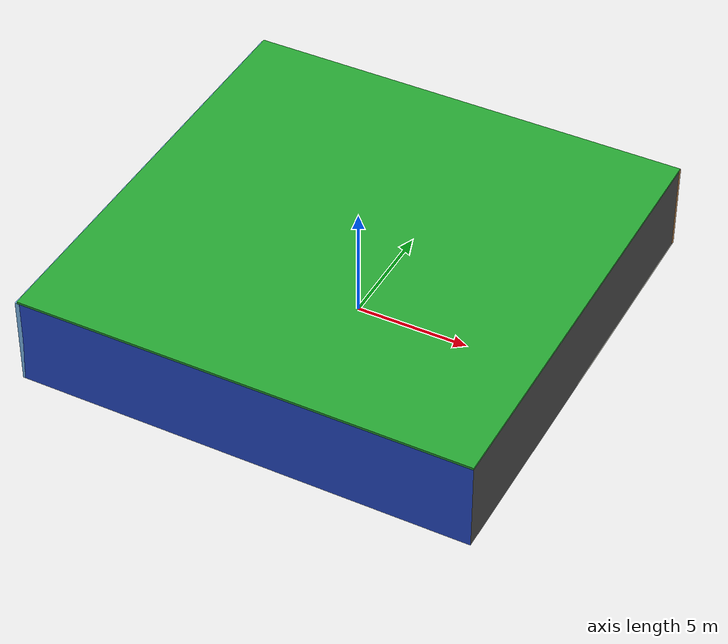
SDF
<sdf version="1.4">
 <world name="default">
  <physics type="ode">
   <max_step_size>0.001</max_step_size>
   <real_time_factor>1</real_time_factor>
   <real_time_update_rate>1000</real_time_update_rate>
   <gravity>0 0 -9.8</gravity>
  </physics>
  <scene><ambient>0.4 0.4 0.4 1</ambient><background>0.7 0.7 0.7 1</background><shadows>1</shadows></scene>
  <model name="Surrounding">
   <static>1</static>
   <link name="Ceiling">
    <collision name="Ceiling_Collision"><geometry><box><size>20 20 0.1</size></box></geometry></collision>
    <visual name="Ceiling_Visual">
     <geometry><box><size>20 20 0.1</size></box></geometry>
     <material>
      <script><uri>file://media/materials/scripts/gazebo.material</uri><name>Gazebo/GreenGlow</name></script>
     </material>
    </visual>
    <pose>0 0 4.05 0 0 0</pose>
   </link>
   <link name="Wall_South">
    <collision name="Wall_South_Collision">
     <geometry><box><size>20 0 4</size></box></geometry>
     <pose>0 0 2 0 -0 0</pose>
    </collision>
    <visual name="Wall_South_Visual">
     <pose>0 0 2 0 -0 0</pose>
     <geometry><box><size>20 0 4</size></box></geometry>
     <material>
      <script><uri>file://media/materials/scripts/gazebo.material</uri><name>Gazebo/BlueGlow</name></script>
     </material>
    </visual>
    <velocity_decay><linear>0</linear><angular>0</angular></velocity_decay>
    <pose>0 -10 0 0 -0 0</pose>
   </link>
   <link name="Wall_East">
    <collision name="Wall_21_Collision">
     <geometry><box><size>20 0 4</size></box></geometry>
     <pose>0 0 2 0 -0 0</pose>
    </collision>
    <visual name="Wall_21_Visual">
     <pose>0 0 2 0 -0 0</pose>
     <geometry><box><size>20 0 4</size></box></geometry>
     <material>
      <script><uri>file://media/materials/scripts/gazebo.material</uri><name>Gazebo/DarkGrey</name></script>
     </material>
    </visual>
    <velocity_decay><linear>0</linear><angular>0</angular></velocity_decay>
    <pose>10 0 0 0 -0 1.5708</pose>
   </link>
   <link name="Wall_North">
    <collision name="Wall_22_Collision">
     <geometry><box><size>20 0.2 4</size></box></geometry>
     <pose>0 0 2 0 -0 0</pose>
    </collision>
    <visual name="Wall_22_Visual">
     <pose>0 0 2 0 -0 0</pose>
     <geometry><box><size>20 0.2 4</size></box></geometry>
     <material>
      <script><uri>file://media/materials/scripts/gazebo.material</uri><name>Gazebo/WoodFloor</name></script>
     </material>
    </visual>
    <velocity_decay><linear>0</linear><angular>0</angular></velocity_decay>
    <pose>0 10 0 0 -0 0</pose>
   </link>
   <link name="Wall_West">
    <collision name="Wall_23_Collision">
     <geometry><box><size>20 0.2 4</size></box></geometry>
     <pose>0 0 2 0 -0 0</pose>
    </collision>
    <visual name="Wall_23_Visual">
     <pose>0 0 2 0 -0 0</pose>
     <geometry><box><size>20 0.2 4</size></box></geometry>
     <material>
      <script><uri>file://media/materials/scripts/gazebo.material</uri><name>Gazebo/SkyBlue</name></script>
     </material>
    </visual>
    <velocity_decay><linear>0</linear><angular>0</angular></velocity_decay>
    <pose>-10 0 0 0 0 -1.5708</pose>
   </link>
   <link name="Ground_link">
    <collision name="collision">
     <pose>0 0 .05 0 -0 0</pose>
     <geometry><box><size>20 20 0.1</size></box></geometry>
    </collision>
    <visual name="visual">
     <pose>0 0 .05 0 -0 0</pose>
     <geometry><box><size>20 20 0.1</size></box></geometry>
     <material>
      <script><uri>file://media/materials/scripts/gazebo.material</uri><name>Gazebo/PaintedWall</name></script>
     </material>
    </visual>
   </link>
   <static>1</static>
  </model>
  <spherical_coordinates>
   <surface_model>EARTH_WGS84</surface_model>
   <latitude_deg>0</latitude_deg>
   <longitude_deg>0</longitude_deg>
   <elevation>0</elevation>
   <heading_deg>0</heading_deg>
  </spherical_coordinates>
  <light name="lightball_0" type="diffuse">
   <diffuse>0.8 0.8 0.8 1</diffuse>
   <specular>0.2 0.2 0.2 1</specular>
   <attenuation>
    <range>100</range>
    <constant>0.7</constant>
    <linear>0.01</linear>
    <quadratic>0.001</quadratic>
   </attenuation>
   <direction>-0.5 0.1 -0.9</direction>
   <pose>7.5712734388 3.9603748119 2.54333832828 0 0 0</pose>
  </light>
  <light name="lightball_1" type="diffuse">
   <diffuse>0.8 0.8 0.8 1</diffuse>
   <specular>0.2 0.2 0.2 1</specular>
   <attenuation>
    <range>100</range>
    <constant>0.7</constant>
    <linear>0.01</linear>
    <quadratic>0.001</quadratic>
   </attenuation>
   <direction>-0.5 0.1 -0.9</direction>
   <pose>-7.74152729291 9.41777922037 1.44593179345 0 0 0</pose>
  </light>
  <light name="lightball_2" type="diffuse">
   <diffuse>0.8 0.8 0.8 1</diffuse>
   <specular>0.2 0.2 0.2 1</specular>
   <attenuation>
    <range>100</range>
    <constant>0.7</constant>
    <linear>0.01</linear>
    <quadratic>0.001</quadratic>
   </attenuation>
   <direction>-0.5 0.1 -0.9</direction>
   <pose>5.63801961073 -0.354034095814 2.9058560382 0 0 0</pose>
  </light>
  <light name="lightball_3" type="diffuse">
   <diffuse>0.8 0.8 0.8 1</diffuse>
   <specular>0.2 0.2 0.2 1</specular>
   <attenuation>
    <range>100</range>
    <constant>0.7</constant>
    <linear>0.01</linear>
    <quadratic>0.001</quadratic>
   </attenuation>
   <direction>-0.5 0.1 -0.9</direction>
   <pose>-3.05048993806 0.0502473745502 3.28385015168 0 0 0</pose>
  </light>
  <light name="lightball_4" type="diffuse">
   <diffuse>0.8 0.8 0.8 1</diffuse>
   <specular>0.2 0.2 0.2 1</specular>
   <attenuation>
    <range>100</range>
    <constant>0.7</constant>
    <linear>0.01</linear>
    <quadratic>0.001</quadratic>
   </attenuation>
   <direction>-0.5 0.1 -0.9</direction>
   <pose>-0.170127994337 -7.91651285838 1.38970120792 0 0 0</pose>
  </light>
  <light name="lightball_5" type="diffuse">
   <diffuse>0.8 0.8 0.8 1</diffuse>
   <specular>0.2 0.2 0.2 1</specular>
   <attenuation>
    <range>100</range>
    <constant>0.7</constant>
    <linear>0.01</linear>
    <quadratic>0.001</quadratic>
   </attenuation>
   <direction>-0.5 0.1 -0.9</direction>
   <pose>-2.17294669347 9.65900060617 2.33934229655 0 0 0</pose>
  </light>
  <light name="lightball_6" type="diffuse">
   <diffuse>0.8 0.8 0.8 1</diffuse>
   <specular>0.2 0.2 0.2 1</specular>
   <attenuation>
    <range>100</range>
    <constant>0.7</constant>
    <linear>0.01</linear>
    <quadratic>0.001</quadratic>
   </attenuation>
   <direction>-0.5 0.1 -0.9</direction>
   <pose>8.63222259768 4.31629889765 0.987497705298 0 0 0</pose>
  </light>
  <light name="lightball_7" type="diffuse">
   <diffuse>0.8 0.8 0.8 1</diffuse>
   <specular>0.2 0.2 0.2 1</specular>
   <attenuation>
    <range>100</range>
    <constant>0.7</constant>
    <linear>0.01</linear>
    <quadratic>0.001</quadratic>
   </attenuation>
   <direction>-0.5 0.1 -0.9</direction>
   <pose>4.79054108673 -9.27087516001 0.713370771381 0 0 0</pose>
  </light>
  <light name="lightball_8" type="diffuse">
   <diffuse>0.8 0.8 0.8 1</diffuse>
   <specular>0.2 0.2 0.2 1</specular>
   <attenuation>
    <range>100</range>
    <constant>0.7</constant>
    <linear>0.01</linear>
    <quadratic>0.001</quadratic>
   </attenuation>
   <direction>-0.5 0.1 -0.9</direction>
   <pose>-9.8136104606 -8.00842889538 1.01861551647 0 0 0</pose>
  </light>
  <light name="lightball_9" type="diffuse">
   <diffuse>0.8 0.8 0.8 1</diffuse>
   <specular>0.2 0.2 0.2 1</specular>
   <attenuation>
    <range>100</range>
    <constant>0.7</constant>
    <linear>0.01</linear>
    <quadratic>0.001</quadratic>
   </attenuation>
   <direction>-0.5 0.1 -0.9</direction>
   <pose>-0.751951835374 -5.27231826173 0.8985166142 0 0 0</pose>
  </light>
  <light name="lightball_10" type="diffuse">
   <diffuse>0.8 0.8 0.8 1</diffuse>
   <specular>0.2 0.2 0.2 1</specular>
   <attenuation>
    <range>100</range>
    <constant>0.7</constant>
    <linear>0.01</linear>
    <quadratic>0.001</quadratic>
   </attenuation>
   <direction>-0.5 0.1 -0.9</direction>
   <pose>-9.61347823264 -3.49776200832 1.42231798724 0 0 0</pose>
  </light>
  <light name="lightball_11" type="diffuse">
   <diffuse>0.8 0.8 0.8 1</diffuse>
   <specular>0.2 0.2 0.2 1</specular>
   <attenuation>
    <range>100</range>
    <constant>0.7</constant>
    <linear>0.01</linear>
    <quadratic>0.001</quadratic>
   </attenuation>
   <direction>-0.5 0.1 -0.9</direction>
   <pose>8.25618344738 -4.57001523853 0.79332481587 0 0 0</pose>
  </light>
  <include>
   <uri>model://robocup_3Dsim_goal</uri>
   <pose>-6.98331475099 3.77460038733 0 0 0 1.49037683341</pose>
  </include>
  <include>
   <uri>model://textured_shapes</uri>
   <pose>-1.99762118683 1.74791514888 0 0 0 0.273259152426</pose>
  </include>
  <include><uri>model://cabinet</uri><pose>1.47571291269 4.96919841321 0 0 0 1.67492299738</pose></include>
  <include><uri>model://cabinet</uri><pose>4.8012439971 -4.08183786033 0 0 0 2.82968333444</pose></include>
  <include>
   <uri>model://robocup_3Dsim_goal</uri>
   <pose>4.30002972938 4.16557971922 0 0 0 3.02236743993</pose>
  </include>
  <include><uri>model://cabinet</uri><pose>7.4005246066 -3.94641827304 0 0 0 1.05540339109</pose></include>
 </world>
</sdf>

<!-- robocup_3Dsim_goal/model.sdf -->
<sdf version="1.5">
  <model name="robocup_3d_goal">
    <static>true</static>
    <link name="left_post">
      <pose>0 1.05 0.45 0 0 0</pose>
      <collision name="collision">
        <geometry>
          <cylinder>
            <radius>0.05</radius>
            <length>0.9</length>
          </cylinder>
        </geometry>
      </collision>
      <visual name="visual">
        <geometry>
          <cylinder>
            <radius>0.05</radius>
            <length>0.9</length>
          </cylinder>
        </geometry>
        <material>
          <script>
            <uri>file://media/materials/scripts/gazebo.material</uri>
            <name>Gazebo/ZincYellow</name>
          </script>
        </material>
      </visual>
    </link>
    <link name="left_support_horiz_lower">
      <pose>0.30 1.05 0.01 0 0 0</pose>
      <collision name="collision">
        <geometry>
          <box>
            <size>0.50 0.02 0.02</size>
          </box>
        </geometry>
      </collision>
      <visual name="visual">
        <geometry>
          <box>
            <size>0.50 0.02 0.02</size>
          </box>
        </geometry>
        <material>
          <script>
            <uri>file://media/materials/scripts/gazebo.material</uri>
            <name>Gazebo/White</name>
          </script>
        </material>
      </visual>
    </link>
    <link name="left_support_horiz_upper">
      <pose>0.30 1.05 0.79 0 0 0</pose>
      <collision name="collision">
        <geometry>
          <box>
            <size>0.50 0.02 0.02</size>
          </box>
        </geometry>
      </collision>
      <visual name="visual">
        <geometry>
          <box>
            <size>0.50 0.02 0.02</size>
          </box>
        </geometry>
        <material>
          <script>
            <uri>file://media/materials/scripts/gazebo.material</uri>
            <name>Gazebo/White</name>
          </script>
        </material>
      </visual>
    </link>
    <link name="left_support_vertical">
      <pose>0.56 1.05 0.4 0 1.5708 0</pose>
      <collision name="collision">
        <geometry>
          <box>
            <size>0.80 0.02 0.02</size>
          </box>
        </geometry>
      </collision>
      <visual name="visual">
        <geometry>
          <box>
            <size>0.80 0.02 0.02</size>
          </box>
        </geometry>
        <material>
          <script>
            <uri>file://media/materials/scripts/gazebo.material</uri>
            <name>Gazebo/White</name>
          </script>
        </material>
      </visual>
    </link>
    <link name="right_support_horiz_lower">
      <pose>0.30 -1.05 0.01 0 0 0</pose>
      <collision name="collision">
        <geometry>
          <box>
            <size>0.50 0.02 0.02</size>
          </box>
        </geometry>
      </collision>
      <visual name="visual">
        <geometry>
          <box>
            <size>0.50 0.02 0.02</size>
          </box>
        </geometry>
        <material>
          <script>
            <uri>file://media/materials/scripts/gazebo.material</uri>
            <name>Gazebo/White</name>
          </script>
        </material>
      </visual>
    </link>
    <link name="right_support_horiz_upper">
      <pose>0.30 -1.05 0.79 0 0 0</pose>
      <collision name="collision">
        <geometry>
          <box>
            <size>0.50 0.02 0.02</size>
          </box>
        </geometry>
      </collision>
      <visual name="visual">
        <geometry>
          <box>
            <size>0.50 0.02 0.02</size>
          </box>
        </geometry>
        <material>
          <script>
            <uri>file://media/materials/scripts/gazebo.material</uri>
            <name>Gazebo/White</name>
          </script>
        </material>
      </visual>
    </link>
    <link name="right_support_vertical">
      <pose>0.56 -1.05 0.4 0 1.5708 0</pose>
      <collision name="collision">
        <geometry>
          <box>
            <size>0.80 0.02 0.02</size>
          </box>
        </geometry>
      </collision>
      <visual name="visual">
        <geometry>
          <box>
            <size>0.80 0.02 0.02</size>
          </box>
        </geometry>
        <material>
          <script>
            <uri>file://media/materials/scripts/gazebo.material</uri>
            <name>Gazebo/White</name>
          </script>
        </material>
      </visual>
    </link>
    <link name="center_support_horiz_lower">
      <pose>0.56 0 0.01 0 1.5708 0</pose>
      <collision name="collision">
        <geometry>
          <box>
            <size>0.02 2.08 0.02</size>
          </box>
        </geometry>
      </collision>
      <visual name="visual">
        <geometry>
          <box>
            <size>0.02 2.08 0.02</size>
          </box>
        </geometry>
        <material>
          <script>
            <uri>file://media/materials/scripts/gazebo.material</uri>
            <name>Gazebo/White</name>
          </script>
        </material>
      </visual>
    </link>
    <link name="center_support_horiz_upper">
      <pose>0.56 0 0.79 0 1.5708 0</pose>
      <collision name="collision">
        <geometry>
          <box>
            <size>0.02 2.08 0.02</size>
          </box>
        </geometry>
      </collision>
      <visual name="visual">
        <geometry>
          <box>
            <size>0.02 2.08 0.02</size>
          </box>
        </geometry>
        <material>
          <script>
            <uri>file://media/materials/scripts/gazebo.material</uri>
            <name>Gazebo/White</name>
          </script>
        </material>
      </visual>
    </link>
    <link name="right_post">
      <pose>0 -1.05 0.45 0 0 0</pose>
      <collision name="collision">
        <geometry>
          <cylinder>
            <radius>0.05</radius>
            <length>0.9</length>
          </cylinder>
        </geometry>
      </collision>
      <visual name="visual">
        <geometry>
          <cylinder>
            <radius>0.05</radius>
            <length>0.9</length>
          </cylinder>
        </geometry>
        <material>
          <script>
            <uri>file://media/materials/scripts/gazebo.material</uri>
            <name>Gazebo/ZincYellow</name>
          </script>
        </material>
      </visual>
    </link>
    <link name="crossbar">
      <pose>0 0 0.85 1.57 1.57 0</pose>
      <collision name="collision">
        <geometry>
          <cylinder>
            <radius>0.05</radius>
            <length>2.0</length>
          </cylinder>
        </geometry>
      </collision>
      <visual name="visual">
        <geometry>
          <cylinder>
            <radius>0.05</radius>
            <length>2.0</length>
          </cylinder>
        </geometry>
        <material>
          <script>
            <uri>file://media/materials/scripts/gazebo.material</uri>
            <name>Gazebo/ZincYellow</name>
          </script>
        </material>
      </visual>
    </link>
    <link name="center_net">
      <pose>0.56 0 0.40 0 0 0</pose>
      <collision name="collision">
        <geometry>
          <box>
            <size>0.01 2.1 0.80</size>
          </box>
        </geometry>
      </collision>
      <visual name="visual">
        <geometry>
          <box>
            <size>0.01 2.1 0.80</size>
          </box>
        </geometry>
        <material>
          <script>
            <uri>model://../model_source/models/robocup09_spl_field/materials/scripts/</uri>
            <uri>model://../model_source/models/robocup09_spl_field/materials/textures/</uri>
            <name>RoboCup/Net</name>
          </script>
        </material>
      </visual>
    </link>
    <link name="left_net">
      <pose>0.30 1.05 0.40 0 0 0</pose>
      <collision name="collision">
        <geometry>
          <box>
            <size>0.50 0.01 0.76</size>
          </box>
        </geometry>
      </collision>
      <visual name="visual">
        <geometry>
          <box>
            <size>0.50 0.01 0.76</size>
          </box>
        </geometry>
        <material>
          <script>
            <uri>model://../model_source/models/robocup09_spl_field/materials/scripts/</uri>
            <uri>model://../model_source/models/robocup09_spl_field/materials/textures/</uri>
            <name>RoboCup/Net</name>
          </script>
        </material>
      </visual>
    </link>
    <link name="right_net">
      <pose>0.30 -1.05 0.40 0 0 0</pose>
      <collision name="collision">
        <geometry>
          <box>
            <size>0.50 0.01 0.76</size>
          </box>
        </geometry>
      </collision>
      <visual name="visual">
        <geometry>
          <box>
            <size>0.50 0.01 0.76</size>
          </box>
        </geometry>
        <material>
          <script>
            <uri>model://../model_source/models/robocup09_spl_field/materials/scripts/</uri>
            <uri>model://../model_source/models/robocup09_spl_field/materials/textures/</uri>
            <name>RoboCup/Net</name>
          </script>
        </material>
      </visual>
    </link>
  </model>
</sdf>

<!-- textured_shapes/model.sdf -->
<sdf version="1.6">
  <model name="textured_shapes">
    <pose>0 0 0.5 0 0 0</pose>
    <link name="box">
      <pose>0 -1.5 0 0 0 0</pose>
      <collision name="collision">
        <geometry>
          <box>
            <size>1 1 1</size>
          </box>
        </geometry>
      </collision>
      <visual name="visual">
        <geometry>
          <box>
            <size>1 1 1</size>
          </box>
        </geometry>
        <material>
          <script>
            <uri>model://../model_source/models/textured_shapes/materials/scripts</uri>
            <uri>model://../model_source/models/textured_shapes/materials/textures</uri>
            <name>TexturedShape/Squares</name>
          </script>
        </material>
      </visual>
    </link>
    <link name="sphere">
      <collision name="collision">
        <geometry>
          <sphere>
            <radius>0.5</radius>
          </sphere>
        </geometry>
      </collision>
      <visual name="visual">
        <geometry>
          <sphere>
            <radius>0.5</radius>
          </sphere>
        </geometry>
        <material>
          <script>
            <uri>model://../model_source/models/textured_shapes/materials/scripts</uri>
            <uri>model://../model_source/models/textured_shapes/materials/textures</uri>
            <name>TexturedShape/Squares</name>
          </script>
        </material>
      </visual>
    </link>
    <link name="cylinder">
      <pose>0 1.5 0 0 0 0</pose>
      <collision name="collision">
        <geometry>
          <cylinder>
            <radius>0.5</radius>
            <length>1</length>
          </cylinder>
        </geometry>
      </collision>
      <visual name="visual">
        <geometry>
          <cylinder>
            <radius>0.5</radius>
            <length>1</length>
          </cylinder>
        </geometry>
        <material>
          <script>
            <uri>model://../model_source/models/textured_shapes/materials/scripts</uri>
            <uri>model://../model_source/models/textured_shapes/materials/textures</uri>
            <name>TexturedShape/Squares</name>
          </script>
        </material>
      </visual>
    </link>
  </model>
</sdf>

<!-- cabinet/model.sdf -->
<sdf version="1.5">
  <model name="cabinet">
    <static>true</static>
    <link name="cabinet_bottom_plate">
      <inertial>
        <pose>0 0 -1 0 0 0</pose>
        <inertia>
          <ixx>2.050000</ixx>
          <ixy>0</ixy>
          <ixz>0</ixz>
          <iyy>2.050000</iyy>
          <iyz>0</iyz>
          <izz>2.050000</izz>
        </inertia>
        <mass>25.000000</mass>
      </inertial>
      <collision name="cabinet_bottom_plate_geom">
        <pose>0 0 0.010000 0 0 0</pose>
        <geometry>
          <box>
            <size>0.450000 0.450000 0.020000</size>
          </box>
        </geometry>
      </collision>
      <visual name="cabinet_bottom_plate_geom_visual">
        <pose>0 0 0.010000 0 0 0</pose>
        <geometry>
          <box>
            <size>0.450000 0.450000 0.020000</size>
          </box>
        </geometry>
        <material>
          <script>
            <uri>model://media/materials/scripts/gazebo.material</uri>
            <name>Gazebo/Wood</name>
          </script>
        </material>
      </visual>
      <collision name="cabinet_bottom_plate_geom_cabinet_back_plate">
        <pose>0.235000 0 0.510000 0 0 0</pose>
        <geometry>
          <box>
            <size>0.020000 0.450000 1.020000</size>
          </box>
        </geometry>
      </collision>
      <visual name="cabinet_bottom_plate_geom_cabinet_back_plate_visual">
        <pose>0.235000 0 0.510000 0 0 0</pose>
        <geometry>
          <box>
            <size>0.020000 0.450000 1.020000</size>
          </box>
        </geometry>
        <material>
          <script>
            <uri>model://media/materials/scripts/gazebo.material</uri>
            <name>Gazebo/Wood</name>
          </script>
        </material>
      </visual>
      <collision name="cabinet_bottom_plate_geom_cabinet_left_plate">
        <pose>0 0.235000 0.510000 0 0 0</pose>
        <geometry>
          <box>
            <size>0.450000 0.020000 1.020000</size>
          </box>
        </geometry>
      </collision>
      <visual name="cabinet_bottom_plate_geom_cabinet_left_plate_visual">
        <pose>0 0.235000 0.510000 0 0 0</pose>
        <geometry>
          <box>
            <size>0.450000 0.020000 1.020000</size>
          </box>
        </geometry>
        <material>
          <script>
            <uri>model://media/materials/scripts/gazebo.material</uri>
            <name>Gazebo/Wood</name>
          </script>
        </material>
      </visual>
      <collision name="cabinet_bottom_plate_geom_cabinet_middle_plate">
        <pose>0 0 0.510000 0 0 0</pose>
        <geometry>
          <box>
            <size>0.450000 0.450000 0.020000</size>
          </box>
        </geometry>
      </collision>
      <visual name="cabinet_bottom_plate_geom_cabinet_middle_plate_visual">
        <pose>0 0 0.510000 0 0 0</pose>
        <geometry>
          <box>
            <size>0.450000 0.450000 0.020000</size>
          </box>
        </geometry>
        <material>
          <script>
            <uri>model://media/materials/scripts/gazebo.material</uri>
            <name>Gazebo/Wood</name>
          </script>
        </material>
      </visual>
      <collision name="cabinet_bottom_plate_geom_cabinet_right_plate">
        <pose>0 -0.235000 0.510000 0 0 0</pose>
        <geometry>
          <box>
            <size>0.450000 0.020000 1.020000</size>
          </box>
        </geometry>
      </collision>
      <visual name="cabinet_bottom_plate_geom_cabinet_right_plate_visual">
        <pose>0 -0.235000 0.510000 0 0 0</pose>
        <geometry>
          <box>
            <size>0.450000 0.020000 1.020000</size>
          </box>
        </geometry>
        <material>
          <script>
            <uri>model://media/materials/scripts/gazebo.material</uri>
            <name>Gazebo/Wood</name>
          </script>
        </material>
      </visual>
      <collision name="cabinet_bottom_plate_geom_cabinet_top_plate">
        <pose>0 0 1.010000 0 0 0</pose>
        <geometry>
          <box>
            <size>0.450000 0.450000 0.020000</size>
          </box>
        </geometry>
      </collision>
      <visual name="cabinet_bottom_plate_geom_cabinet_top_plate_visual">
        <pose>0 0 1.010000 0 0 0</pose>
        <geometry>
          <box>
            <size>0.450000 0.450000 0.020000</size>
          </box>
        </geometry>
        <material>
          <script>
            <uri>model://media/materials/scripts/gazebo.material</uri>
            <name>Gazebo/Wood</name>
          </script>
        </material>
      </visual>
    </link>
  </model>
</sdf>
